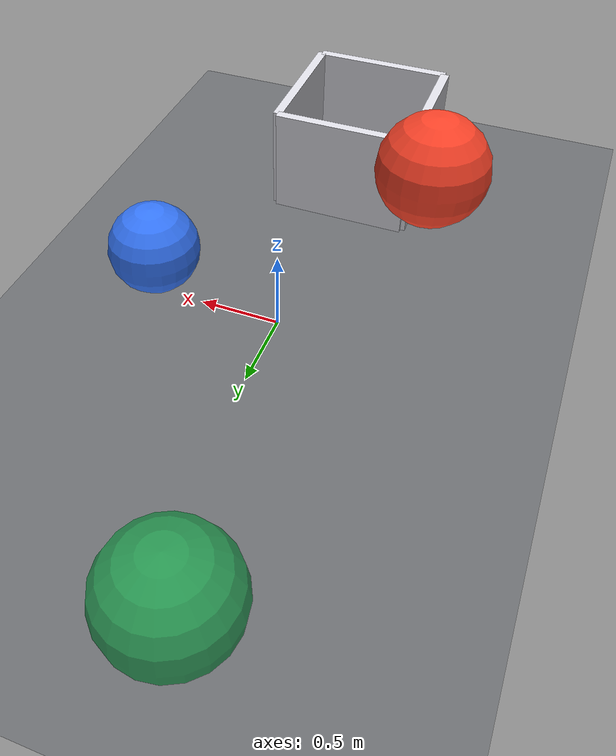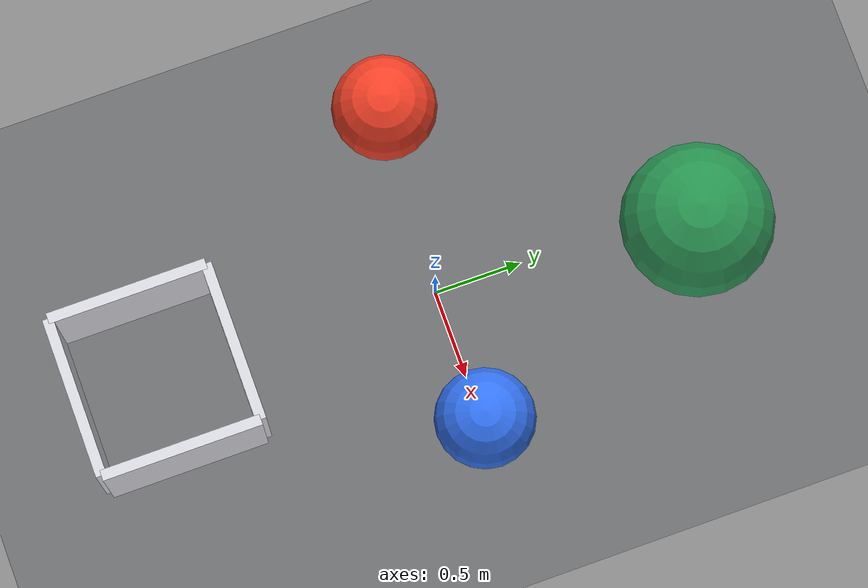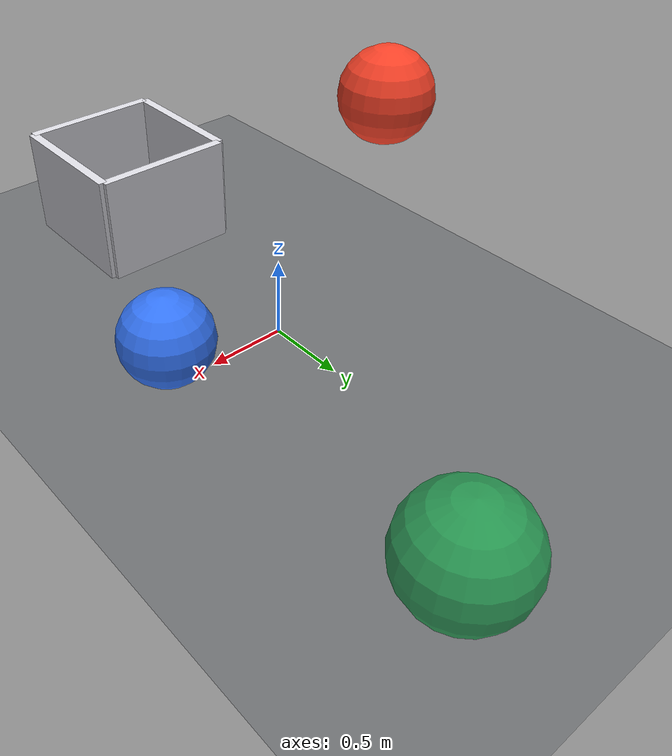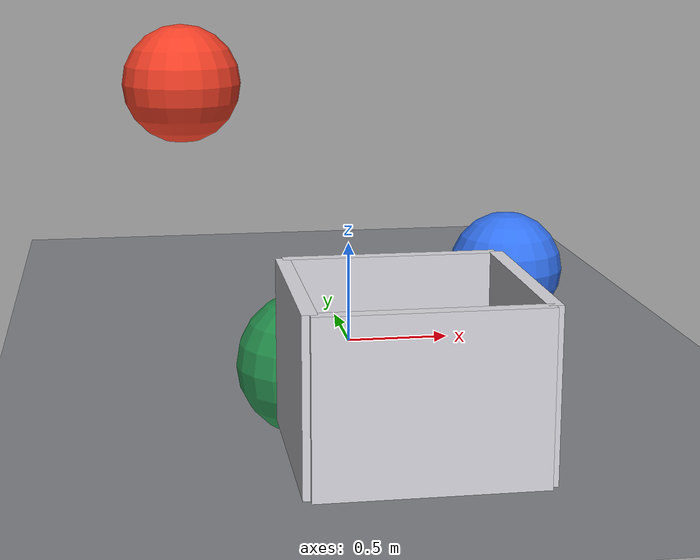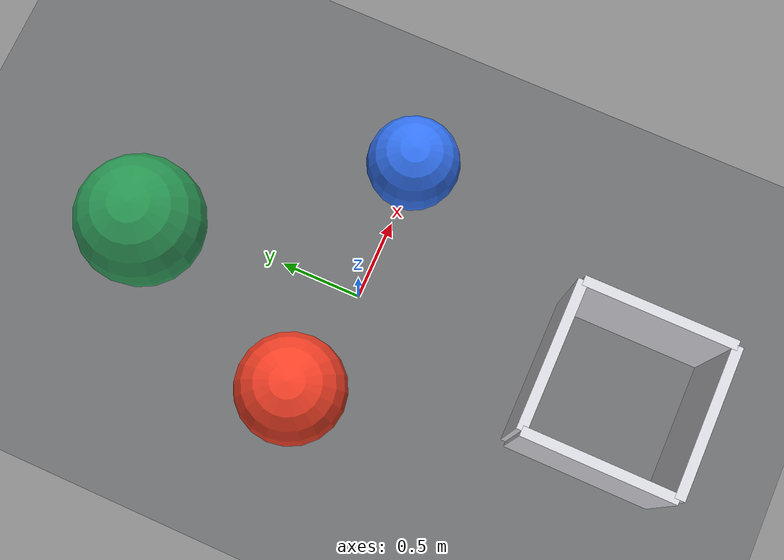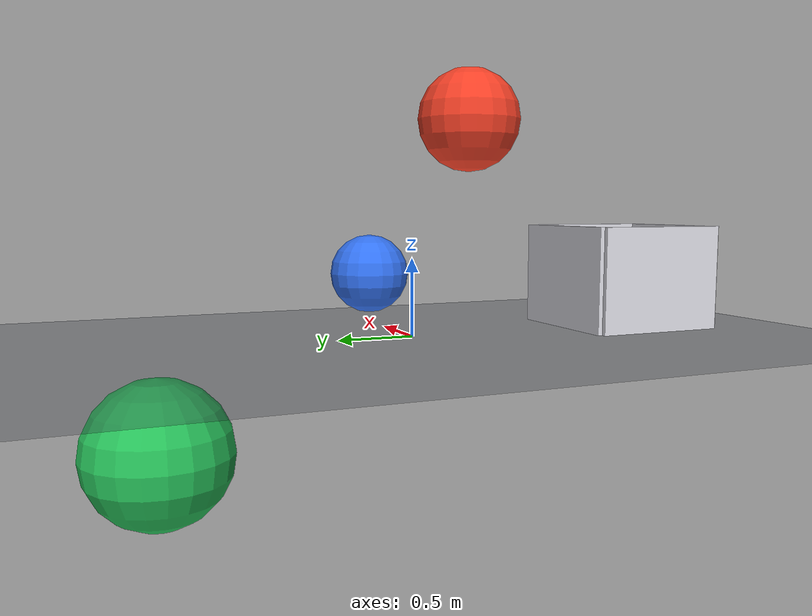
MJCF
<mujoco model="reflection">
  <compiler angle="degree" autolimits="true"/>

  <visual>
    <headlight ambient="0.18 0.18 0.20" diffuse="0.35 0.35 0.35" specular="0.3 0.3 0.3"/>
    <quality shadowsize="4096" numslices="28" numstacks="16"/>
    <map znear="0.02" zfar="60" shadowclip="1.5" shadowscale="0.7"/>
  </visual>

  <asset>
    <texture name="grid" type="2d" builtin="checker" width="512" height="512"
             rgb1="0.14 0.16 0.19" rgb2="0.26 0.29 0.34"/>

    <material name="mirror" texture="grid" texrepeat="1 1" texuniform="true"
              reflectance="0.35"/>

    <material name="hot"  rgba="0.95 0.25 0.15 1" specular="0.2" shininess="0.3"/>
    <material name="cool" rgba="0.20 0.45 0.95 1" specular="0.2" shininess="0.3"/>
    <material name="pale" rgba="0.85 0.85 0.88 1" specular="0.4" shininess="0.5"/>
    <material name="deep" rgba="0.15 0.75 0.35 1" specular="0.2" shininess="0.3"/>
  </asset>

  <worldbody>
    <light name="sun" type="directional" pos="2.0 -3.0 5" dir="-0.3 0.45 -1"
           diffuse="0.70 0.70 0.68" specular="0.25 0.25 0.25" castshadow="true"/>

    <geom name="floor" type="plane" size="0 0 0.05" material="mirror"/>

    <geom name="high" type="sphere" size="0.28" pos="-0.8 0.0 1.30" material="hot"/>
    <geom name="low"  type="sphere" size="0.28" pos="0.8 0.0 0.35" material="cool"/>

    <geom name="buried" type="sphere" size="0.45" pos="0.0 1.6 -0.60" material="deep"/>

    <geom name="shell_a" type="box" size="0.45 0.03 0.35" pos="0.0 -1.15 0.35" material="pale"/>
    <geom name="shell_b" type="box" size="0.45 0.03 0.35" pos="0.0 -2.05 0.35" material="pale"/>
    <geom name="shell_c" type="box" size="0.03 0.45 0.35" pos="-0.45 -1.60 0.35" material="pale"/>
    <geom name="shell_d" type="box" size="0.03 0.45 0.35" pos="0.45 -1.60 0.35" material="pale"/>
  </worldbody>
</mujoco>
